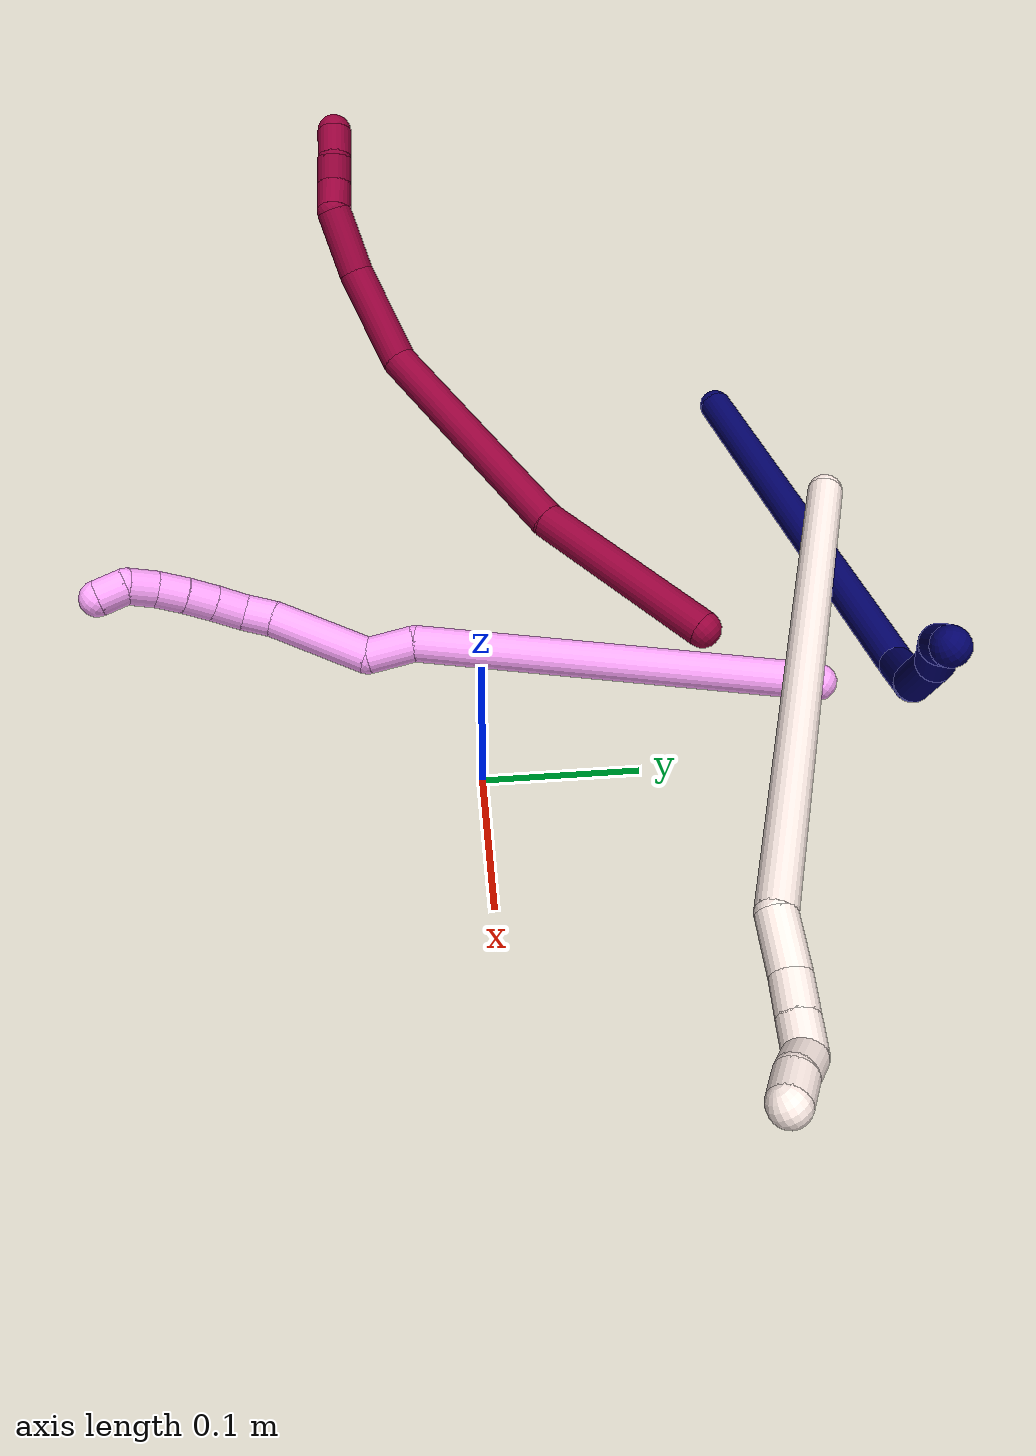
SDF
<sdf version="1.7">
 <world name="default">
  <model name="4">
   <static>0</static>
   <link name="4">
    <collision name="collision-cylinder-e_1_1_4">
     <pose>-0.002493 -0.082238 0.10872 0.647598 -0.018283 -0.006136</pose>
     <geometry><cylinder><radius>0.0125</radius><length>0.272685</length></cylinder></geometry>
     <surface>
      <friction><ode><mu>1.16</mu><mu2>1.16</mu2><slip1>0</slip1><slip2>0</slip2></ode></friction>
      <contact><ode><kp>1e+06</kp><kd>1</kd><max_vel>0</max_vel><min_depth>0.001</min_depth></ode></contact>
     </surface>
    </collision>
    <visual name="visual-cylinder-e_1_1_4">
     <pose>-0.002493 -0.082238 0.10872 0.647598 -0.018283 -0.006136</pose>
     <geometry><cylinder><radius>0.0125</radius><length>0.272685</length></cylinder></geometry>
     <material><ambient>1 0.65098 0.996078 1</ambient></material>
    </visual>
    <collision name="collision-cylinder-e_2_4_5">
     <pose>-0.001651 -0.177371 0.227206 0.922596 0.203303 0.101318</pose>
     <geometry><cylinder><radius>0.0125</radius><length>0.033032</length></cylinder></geometry>
     <surface>
      <friction><ode><mu>1.16</mu><mu2>1.16</mu2><slip1>0</slip1><slip2>0</slip2></ode></friction>
      <contact><ode><kp>1e+06</kp><kd>1</kd><max_vel>0</max_vel><min_depth>0.001</min_depth></ode></contact>
     </surface>
    </collision>
    <visual name="visual-cylinder-e_2_4_5">
     <pose>-0.001651 -0.177371 0.227206 0.922596 0.203303 0.101318</pose>
     <geometry><cylinder><radius>0.0125</radius><length>0.033032</length></cylinder></geometry>
     <material><ambient>1 0.65098 0.996078 1</ambient></material>
    </visual>
    <collision name="collision-cylinder-e_3_5_6">
     <pose>-0.005692 -0.205133 0.26795 0.447462 -0.211454 -0.048285</pose>
     <geometry><cylinder><radius>0.0125</radius><length>0.070286</length></cylinder></geometry>
     <surface>
      <friction><ode><mu>1.16</mu><mu2>1.16</mu2><slip1>0</slip1><slip2>0</slip2></ode></friction>
      <contact><ode><kp>1e+06</kp><kd>1</kd><max_vel>0</max_vel><min_depth>0.001</min_depth></ode></contact>
     </surface>
    </collision>
    <visual name="visual-cylinder-e_3_5_6">
     <pose>-0.005692 -0.205133 0.26795 0.447462 -0.211454 -0.048285</pose>
     <geometry><cylinder><radius>0.0125</radius><length>0.070286</length></cylinder></geometry>
     <material><ambient>1 0.65098 0.996078 1</ambient></material>
    </visual>
    <collision name="collision-cylinder-e_4_6_7">
     <pose>-0.013655 -0.225168 0.307987 0.518405 -0.056283 -0.014928</pose>
     <geometry><cylinder><radius>0.0125</radius><length>0.020893</length></cylinder></geometry>
     <surface>
      <friction><ode><mu>1.16</mu><mu2>1.16</mu2><slip1>0</slip1><slip2>0</slip2></ode></friction>
      <contact><ode><kp>1e+06</kp><kd>1</kd><max_vel>0</max_vel><min_depth>0.001</min_depth></ode></contact>
     </surface>
    </collision>
    <visual name="visual-cylinder-e_4_6_7">
     <pose>-0.013655 -0.225168 0.307987 0.518405 -0.056283 -0.014928</pose>
     <geometry><cylinder><radius>0.0125</radius><length>0.020893</length></cylinder></geometry>
     <material><ambient>1 0.65098 0.996078 1</ambient></material>
    </visual>
    <collision name="collision-cylinder-e_5_7_8">
     <pose>-0.011978 -0.232956 0.327492 0.245782 0.207317 0.025697</pose>
     <geometry><cylinder><radius>0.0125</radius><length>0.02201</length></cylinder></geometry>
     <surface>
      <friction><ode><mu>1.16</mu><mu2>1.16</mu2><slip1>0</slip1><slip2>0</slip2></ode></friction>
      <contact><ode><kp>1e+06</kp><kd>1</kd><max_vel>0</max_vel><min_depth>0.001</min_depth></ode></contact>
     </surface>
    </collision>
    <visual name="visual-cylinder-e_5_7_8">
     <pose>-0.011978 -0.232956 0.327492 0.245782 0.207317 0.025697</pose>
     <geometry><cylinder><radius>0.0125</radius><length>0.02201</length></cylinder></geometry>
     <material><ambient>1 0.65098 0.996078 1</ambient></material>
    </visual>
    <collision name="collision-cylinder-e_6_8_9">
     <pose>-0.007218 -0.238012 0.347453 0.250587 0.248687 0.031483</pose>
     <geometry><cylinder><radius>0.0125</radius><length>0.020269</length></cylinder></geometry>
     <surface>
      <friction><ode><mu>1.16</mu><mu2>1.16</mu2><slip1>0</slip1><slip2>0</slip2></ode></friction>
      <contact><ode><kp>1e+06</kp><kd>1</kd><max_vel>0</max_vel><min_depth>0.001</min_depth></ode></contact>
     </surface>
    </collision>
    <visual name="visual-cylinder-e_6_8_9">
     <pose>-0.007218 -0.238012 0.347453 0.250587 0.248687 0.031483</pose>
     <geometry><cylinder><radius>0.0125</radius><length>0.020269</length></cylinder></geometry>
     <material><ambient>1 0.65098 0.996078 1</ambient></material>
    </visual>
    <collision name="collision-cylinder-e_7_9_10">
     <pose>-0.002129 -0.243583 0.366467 0.318799 0.253858 0.041026</pose>
     <geometry><cylinder><radius>0.0125</radius><length>0.020666</length></cylinder></geometry>
     <surface>
      <friction><ode><mu>1.16</mu><mu2>1.16</mu2><slip1>0</slip1><slip2>0</slip2></ode></friction>
      <contact><ode><kp>1e+06</kp><kd>1</kd><max_vel>0</max_vel><min_depth>0.001</min_depth></ode></contact>
     </surface>
    </collision>
    <visual name="visual-cylinder-e_7_9_10">
     <pose>-0.002129 -0.243583 0.366467 0.318799 0.253858 0.041026</pose>
     <geometry><cylinder><radius>0.0125</radius><length>0.020666</length></cylinder></geometry>
     <material><ambient>1 0.65098 0.996078 1</ambient></material>
    </visual>
    <collision name="collision-cylinder-e_8_10_11">
     <pose>0.004655 -0.249604 0.384584 0.323195 0.431834 0.071482</pose>
     <geometry><cylinder><radius>0.0125</radius><length>0.020018</length></cylinder></geometry>
     <surface>
      <friction><ode><mu>1.16</mu><mu2>1.16</mu2><slip1>0</slip1><slip2>0</slip2></ode></friction>
      <contact><ode><kp>1e+06</kp><kd>1</kd><max_vel>0</max_vel><min_depth>0.001</min_depth></ode></contact>
     </surface>
    </collision>
    <visual name="visual-cylinder-e_8_10_11">
     <pose>0.004655 -0.249604 0.384584 0.323195 0.431834 0.071482</pose>
     <geometry><cylinder><radius>0.0125</radius><length>0.020018</length></cylinder></geometry>
     <material><ambient>1 0.65098 0.996078 1</ambient></material>
    </visual>
    <collision name="collision-cylinder-e_9_11_2">
     <pose>0.013574 -0.259769 0.39831 0.958988 0.488914 0.257968</pose>
     <geometry><cylinder><radius>0.0125</radius><length>0.020141</length></cylinder></geometry>
     <surface>
      <friction><ode><mu>1.16</mu><mu2>1.16</mu2><slip1>0</slip1><slip2>0</slip2></ode></friction>
      <contact><ode><kp>1e+06</kp><kd>1</kd><max_vel>0</max_vel><min_depth>0.001</min_depth></ode></contact>
     </surface>
    </collision>
    <visual name="visual-cylinder-e_9_11_2">
     <pose>0.013574 -0.259769 0.39831 0.958988 0.488914 0.257968</pose>
     <geometry><cylinder><radius>0.0125</radius><length>0.020141</length></cylinder></geometry>
     <material><ambient>1 0.65098 0.996078 1</ambient></material>
    </visual>
    <collision name="collision-sphere-2">
     <pose>0.018304 -0.267047 0.403417 0 -0 0</pose>
     <geometry><sphere><radius>0.0125</radius></sphere></geometry>
     <surface>
      <friction><ode><mu>1.16</mu><mu2>1.16</mu2><slip1>0</slip1><slip2>0</slip2></ode></friction>
      <contact><ode><kp>1e+06</kp><kd>1</kd><max_vel>0</max_vel><min_depth>0.001</min_depth></ode></contact>
     </surface>
    </collision>
    <visual name="visual-sphere-2">
     <pose>0.018304 -0.267047 0.403417 0 -0 0</pose>
     <geometry><sphere><radius>0.0125</radius></sphere></geometry>
     <material><ambient>1 0.65098 0.996078 1</ambient></material>
    </visual>
    <collision name="collision-sphere-11">
     <pose>0.008845 -0.252491 0.393204 0 -0 0</pose>
     <geometry><sphere><radius>0.0125</radius></sphere></geometry>
     <surface>
      <friction><ode><mu>1.16</mu><mu2>1.16</mu2><slip1>0</slip1><slip2>0</slip2></ode></friction>
      <contact><ode><kp>1e+06</kp><kd>1</kd><max_vel>0</max_vel><min_depth>0.001</min_depth></ode></contact>
     </surface>
    </collision>
    <visual name="visual-sphere-11">
     <pose>0.008845 -0.252491 0.393204 0 -0 0</pose>
     <geometry><sphere><radius>0.0125</radius></sphere></geometry>
     <material><ambient>1 0.65098 0.996078 1</ambient></material>
    </visual>
    <collision name="collision-sphere-10">
     <pose>0.000466 -0.246717 0.375965 0 -0 0</pose>
     <geometry><sphere><radius>0.0125</radius></sphere></geometry>
     <surface>
      <friction><ode><mu>1.16</mu><mu2>1.16</mu2><slip1>0</slip1><slip2>0</slip2></ode></friction>
      <contact><ode><kp>1e+06</kp><kd>1</kd><max_vel>0</max_vel><min_depth>0.001</min_depth></ode></contact>
     </surface>
    </collision>
    <visual name="visual-sphere-10">
     <pose>0.000466 -0.246717 0.375965 0 -0 0</pose>
     <geometry><sphere><radius>0.0125</radius></sphere></geometry>
     <material><ambient>1 0.65098 0.996078 1</ambient></material>
    </visual>
    <collision name="collision-sphere-9">
     <pose>-0.004724 -0.240448 0.356969 0 -0 0</pose>
     <geometry><sphere><radius>0.0125</radius></sphere></geometry>
     <surface>
      <friction><ode><mu>1.16</mu><mu2>1.16</mu2><slip1>0</slip1><slip2>0</slip2></ode></friction>
      <contact><ode><kp>1e+06</kp><kd>1</kd><max_vel>0</max_vel><min_depth>0.001</min_depth></ode></contact>
     </surface>
    </collision>
    <visual name="visual-sphere-9">
     <pose>-0.004724 -0.240448 0.356969 0 -0 0</pose>
     <geometry><sphere><radius>0.0125</radius></sphere></geometry>
     <material><ambient>1 0.65098 0.996078 1</ambient></material>
    </visual>
    <collision name="collision-sphere-4">
     <pose>-0.004985 -0.164476 0.21744 0 -0 0</pose>
     <geometry><sphere><radius>0.0125</radius></sphere></geometry>
     <surface>
      <friction><ode><mu>1.16</mu><mu2>1.16</mu2><slip1>0</slip1><slip2>0</slip2></ode></friction>
      <contact><ode><kp>1e+06</kp><kd>1</kd><max_vel>0</max_vel><min_depth>0.001</min_depth></ode></contact>
     </surface>
    </collision>
    <visual name="visual-sphere-4">
     <pose>-0.004985 -0.164476 0.21744 0 -0 0</pose>
     <geometry><sphere><radius>0.0125</radius></sphere></geometry>
     <material><ambient>1 0.65098 0.996078 1</ambient></material>
    </visual>
    <collision name="collision-sphere-1">
     <geometry><sphere><radius>0.0125</radius></sphere></geometry>
     <surface>
      <friction><ode><mu>1.16</mu><mu2>1.16</mu2><slip1>0</slip1><slip2>0</slip2></ode></friction>
      <contact><ode><kp>1e+06</kp><kd>1</kd><max_vel>0</max_vel><min_depth>0.001</min_depth></ode></contact>
     </surface>
    </collision>
    <visual name="visual-sphere-1">
     <geometry><sphere><radius>0.0125</radius></sphere></geometry>
     <material><ambient>1 0.65098 0.996078 1</ambient></material>
    </visual>
    <collision name="collision-sphere-8">
     <pose>-0.009713 -0.235576 0.337937 0 -0 0</pose>
     <geometry><sphere><radius>0.0125</radius></sphere></geometry>
     <surface>
      <friction><ode><mu>1.16</mu><mu2>1.16</mu2><slip1>0</slip1><slip2>0</slip2></ode></friction>
      <contact><ode><kp>1e+06</kp><kd>1</kd><max_vel>0</max_vel><min_depth>0.001</min_depth></ode></contact>
     </surface>
    </collision>
    <visual name="visual-sphere-8">
     <pose>-0.009713 -0.235576 0.337937 0 -0 0</pose>
     <geometry><sphere><radius>0.0125</radius></sphere></geometry>
     <material><ambient>1 0.65098 0.996078 1</ambient></material>
    </visual>
    <collision name="collision-sphere-5">
     <pose>0.001684 -0.190266 0.236972 0 -0 0</pose>
     <geometry><sphere><radius>0.0125</radius></sphere></geometry>
     <surface>
      <friction><ode><mu>1.16</mu><mu2>1.16</mu2><slip1>0</slip1><slip2>0</slip2></ode></friction>
      <contact><ode><kp>1e+06</kp><kd>1</kd><max_vel>0</max_vel><min_depth>0.001</min_depth></ode></contact>
     </surface>
    </collision>
    <visual name="visual-sphere-5">
     <pose>0.001684 -0.190266 0.236972 0 -0 0</pose>
     <geometry><sphere><radius>0.0125</radius></sphere></geometry>
     <material><ambient>1 0.65098 0.996078 1</ambient></material>
    </visual>
    <collision name="collision-sphere-6">
     <pose>-0.013068 -0.22 0.298927 0 -0 0</pose>
     <geometry><sphere><radius>0.0125</radius></sphere></geometry>
     <surface>
      <friction><ode><mu>1.16</mu><mu2>1.16</mu2><slip1>0</slip1><slip2>0</slip2></ode></friction>
      <contact><ode><kp>1e+06</kp><kd>1</kd><max_vel>0</max_vel><min_depth>0.001</min_depth></ode></contact>
     </surface>
    </collision>
    <visual name="visual-sphere-6">
     <pose>-0.013068 -0.22 0.298927 0 -0 0</pose>
     <geometry><sphere><radius>0.0125</radius></sphere></geometry>
     <material><ambient>1 0.65098 0.996078 1</ambient></material>
    </visual>
    <collision name="collision-sphere-7">
     <pose>-0.014243 -0.230336 0.317046 0 -0 0</pose>
     <geometry><sphere><radius>0.0125</radius></sphere></geometry>
     <surface>
      <friction><ode><mu>1.16</mu><mu2>1.16</mu2><slip1>0</slip1><slip2>0</slip2></ode></friction>
      <contact><ode><kp>1e+06</kp><kd>1</kd><max_vel>0</max_vel><min_depth>0.001</min_depth></ode></contact>
     </surface>
    </collision>
    <visual name="visual-sphere-7">
     <pose>-0.014243 -0.230336 0.317046 0 -0 0</pose>
     <geometry><sphere><radius>0.0125</radius></sphere></geometry>
     <material><ambient>1 0.65098 0.996078 1</ambient></material>
    </visual>
    <inertial>
     <pose>-0.003014 -0.145241 0.199928 0 -0 0</pose>
     <mass>0.5</mass>
     <inertia>
      <ixx>0.001734</ixx>
      <ixy>0</ixy>
      <ixz>0</ixz>
      <iyy>0.001364</iyy>
      <iyz>0</iyz>
      <izz>0.001112</izz>
     </inertia>
    </inertial>
   </link>
   <pose>-0.059204 0.22938 0.011459 0.892486 -0.172442 -0.164077</pose>
  </model>
  <model name="7">
   <static>0</static>
   <link name="7">
    <collision name="collision-cylinder-e_1_1_4">
     <pose>0.132883 0.08008 0.033742 -1.17202 0.991649 -0.689409</pose>
     <geometry><cylinder><radius>0.0125</radius><length>0.317548</length></cylinder></geometry>
     <surface>
      <friction><ode><mu>1.16</mu><mu2>1.16</mu2><slip1>0</slip1><slip2>0</slip2></ode></friction>
      <contact><ode><kp>1e+06</kp><kd>1</kd><max_vel>0</max_vel><min_depth>0.001</min_depth></ode></contact>
     </surface>
    </collision>
    <visual name="visual-cylinder-e_1_1_4">
     <pose>0.132883 0.08008 0.033742 -1.17202 0.991649 -0.689409</pose>
     <geometry><cylinder><radius>0.0125</radius><length>0.317548</length></cylinder></geometry>
     <material><ambient>0.003922 0 0.403922 1</ambient></material>
    </visual>
    <collision name="collision-cylinder-e_2_4_5">
     <pose>0.290837 0.172762 0.053105 -2.42201 0.919284 -1.84194</pose>
     <geometry><cylinder><radius>0.0125</radius><length>0.063061</length></cylinder></geometry>
     <surface>
      <friction><ode><mu>1.16</mu><mu2>1.16</mu2><slip1>0</slip1><slip2>0</slip2></ode></friction>
      <contact><ode><kp>1e+06</kp><kd>1</kd><max_vel>0</max_vel><min_depth>0.001</min_depth></ode></contact>
     </surface>
    </collision>
    <visual name="visual-cylinder-e_2_4_5">
     <pose>0.290837 0.172762 0.053105 -2.42201 0.919284 -1.84194</pose>
     <geometry><cylinder><radius>0.0125</radius><length>0.063061</length></cylinder></geometry>
     <material><ambient>0.003922 0 0.403922 1</ambient></material>
    </visual>
    <collision name="collision-cylinder-e_3_5_6">
     <pose>0.334386 0.184046 0.023747 3.05389 0.887698 2.95755</pose>
     <geometry><cylinder><radius>0.0125</radius><length>0.047645</length></cylinder></geometry>
     <surface>
      <friction><ode><mu>1.16</mu><mu2>1.16</mu2><slip1>0</slip1><slip2>0</slip2></ode></friction>
      <contact><ode><kp>1e+06</kp><kd>1</kd><max_vel>0</max_vel><min_depth>0.001</min_depth></ode></contact>
     </surface>
    </collision>
    <visual name="visual-cylinder-e_3_5_6">
     <pose>0.334386 0.184046 0.023747 3.05389 0.887698 2.95755</pose>
     <geometry><cylinder><radius>0.0125</radius><length>0.047645</length></cylinder></geometry>
     <material><ambient>0.003922 0 0.403922 1</ambient></material>
    </visual>
    <collision name="collision-cylinder-e_4_6_7">
     <pose>0.368331 0.18589 -0.009221 -2.96765 0.702686 -2.67454</pose>
     <geometry><cylinder><radius>0.0125</radius><length>0.047869</length></cylinder></geometry>
     <surface>
      <friction><ode><mu>1.16</mu><mu2>1.16</mu2><slip1>0</slip1><slip2>0</slip2></ode></friction>
      <contact><ode><kp>1e+06</kp><kd>1</kd><max_vel>0</max_vel><min_depth>0.001</min_depth></ode></contact>
     </surface>
    </collision>
    <visual name="visual-cylinder-e_4_6_7">
     <pose>0.368331 0.18589 -0.009221 -2.96765 0.702686 -2.67454</pose>
     <geometry><cylinder><radius>0.0125</radius><length>0.047869</length></cylinder></geometry>
     <material><ambient>0.003922 0 0.403922 1</ambient></material>
    </visual>
    <collision name="collision-cylinder-e_5_7_2">
     <pose>0.393709 0.1921 -0.033128 -2.66588 0.979207 -2.28762</pose>
     <geometry><cylinder><radius>0.0125</radius><length>0.023878</length></cylinder></geometry>
     <surface>
      <friction><ode><mu>1.16</mu><mu2>1.16</mu2><slip1>0</slip1><slip2>0</slip2></ode></friction>
      <contact><ode><kp>1e+06</kp><kd>1</kd><max_vel>0</max_vel><min_depth>0.001</min_depth></ode></contact>
     </surface>
    </collision>
    <visual name="visual-cylinder-e_5_7_2">
     <pose>0.393709 0.1921 -0.033128 -2.66588 0.979207 -2.28762</pose>
     <geometry><cylinder><radius>0.0125</radius><length>0.023878</length></cylinder></geometry>
     <material><ambient>0.003922 0 0.403922 1</ambient></material>
    </visual>
    <collision name="collision-sphere-2">
     <pose>0.403619 0.195149 -0.039047 0 -0 0</pose>
     <geometry><sphere><radius>0.0125</radius></sphere></geometry>
     <surface>
      <friction><ode><mu>1.16</mu><mu2>1.16</mu2><slip1>0</slip1><slip2>0</slip2></ode></friction>
      <contact><ode><kp>1e+06</kp><kd>1</kd><max_vel>0</max_vel><min_depth>0.001</min_depth></ode></contact>
     </surface>
    </collision>
    <visual name="visual-sphere-2">
     <pose>0.403619 0.195149 -0.039047 0 -0 0</pose>
     <geometry><sphere><radius>0.0125</radius></sphere></geometry>
     <material><ambient>0.003922 0 0.403922 1</ambient></material>
    </visual>
    <collision name="collision-sphere-7">
     <pose>0.383799 0.189051 -0.02721 0 -0 0</pose>
     <geometry><sphere><radius>0.0125</radius></sphere></geometry>
     <surface>
      <friction><ode><mu>1.16</mu><mu2>1.16</mu2><slip1>0</slip1><slip2>0</slip2></ode></friction>
      <contact><ode><kp>1e+06</kp><kd>1</kd><max_vel>0</max_vel><min_depth>0.001</min_depth></ode></contact>
     </surface>
    </collision>
    <visual name="visual-sphere-7">
     <pose>0.383799 0.189051 -0.02721 0 -0 0</pose>
     <geometry><sphere><radius>0.0125</radius></sphere></geometry>
     <material><ambient>0.003922 0 0.403922 1</ambient></material>
    </visual>
    <collision name="collision-sphere-6">
     <pose>0.352863 0.182729 0.008768 0 -0 0</pose>
     <geometry><sphere><radius>0.0125</radius></sphere></geometry>
     <surface>
      <friction><ode><mu>1.16</mu><mu2>1.16</mu2><slip1>0</slip1><slip2>0</slip2></ode></friction>
      <contact><ode><kp>1e+06</kp><kd>1</kd><max_vel>0</max_vel><min_depth>0.001</min_depth></ode></contact>
     </surface>
    </collision>
    <visual name="visual-sphere-6">
     <pose>0.352863 0.182729 0.008768 0 -0 0</pose>
     <geometry><sphere><radius>0.0125</radius></sphere></geometry>
     <material><ambient>0.003922 0 0.403922 1</ambient></material>
    </visual>
    <collision name="collision-sphere-5">
     <pose>0.315909 0.185363 0.038726 0 -0 0</pose>
     <geometry><sphere><radius>0.0125</radius></sphere></geometry>
     <surface>
      <friction><ode><mu>1.16</mu><mu2>1.16</mu2><slip1>0</slip1><slip2>0</slip2></ode></friction>
      <contact><ode><kp>1e+06</kp><kd>1</kd><max_vel>0</max_vel><min_depth>0.001</min_depth></ode></contact>
     </surface>
    </collision>
    <visual name="visual-sphere-5">
     <pose>0.315909 0.185363 0.038726 0 -0 0</pose>
     <geometry><sphere><radius>0.0125</radius></sphere></geometry>
     <material><ambient>0.003922 0 0.403922 1</ambient></material>
    </visual>
    <collision name="collision-sphere-1">
     <geometry><sphere><radius>0.0125</radius></sphere></geometry>
     <surface>
      <friction><ode><mu>1.16</mu><mu2>1.16</mu2><slip1>0</slip1><slip2>0</slip2></ode></friction>
      <contact><ode><kp>1e+06</kp><kd>1</kd><max_vel>0</max_vel><min_depth>0.001</min_depth></ode></contact>
     </surface>
    </collision>
    <visual name="visual-sphere-1">
     <geometry><sphere><radius>0.0125</radius></sphere></geometry>
     <material><ambient>0.003922 0 0.403922 1</ambient></material>
    </visual>
    <collision name="collision-sphere-4">
     <pose>0.265765 0.160161 0.067485 0 -0 0</pose>
     <geometry><sphere><radius>0.0125</radius></sphere></geometry>
     <surface>
      <friction><ode><mu>1.16</mu><mu2>1.16</mu2><slip1>0</slip1><slip2>0</slip2></ode></friction>
      <contact><ode><kp>1e+06</kp><kd>1</kd><max_vel>0</max_vel><min_depth>0.001</min_depth></ode></contact>
     </surface>
    </collision>
    <visual name="visual-sphere-4">
     <pose>0.265765 0.160161 0.067485 0 -0 0</pose>
     <geometry><sphere><radius>0.0125</radius></sphere></geometry>
     <material><ambient>0.003922 0 0.403922 1</ambient></material>
    </visual>
    <inertial>
     <pose>0.207002 0.117156 0.027925 0 -0 0</pose>
     <mass>0.5</mass>
     <inertia>
      <ixx>0.000195</ixx>
      <ixy>0</ixy>
      <ixz>0</ixz>
      <iyy>0.001223</iyy>
      <iyz>0</iyz>
      <izz>-0.003645</izz>
     </inertia>
    </inertial>
   </link>
   <pose>-0.381478 0.219472 0.012324 -2.63967 -0.471338 0.559929</pose>
  </model>
  <model name="8">
   <static>0</static>
   <link name="8">
    <collision name="collision-cylinder-e_1_1_4">
     <pose>-0.025051 -0.017075 0.060161 0.276546 -0.381002 -0.053659</pose>
     <geometry><cylinder><radius>0.0125</radius><length>0.134737</length></cylinder></geometry>
     <surface>
      <friction><ode><mu>1.16</mu><mu2>1.16</mu2><slip1>0</slip1><slip2>0</slip2></ode></friction>
      <contact><ode><kp>1e+06</kp><kd>1</kd><max_vel>0</max_vel><min_depth>0.001</min_depth></ode></contact>
     </surface>
    </collision>
    <visual name="visual-cylinder-e_1_1_4">
     <pose>-0.025051 -0.017075 0.060161 0.276546 -0.381002 -0.053659</pose>
     <geometry><cylinder><radius>0.0125</radius><length>0.134737</length></cylinder></geometry>
     <material><ambient>0.584314 0 0.227451 1</ambient></material>
    </visual>
    <collision name="collision-cylinder-e_2_4_5">
     <pose>-0.08693 -0.040137 0.201136 0.073953 -0.426567 -0.016023</pose>
     <geometry><cylinder><radius>0.0125</radius><length>0.178021</length></cylinder></geometry>
     <surface>
      <friction><ode><mu>1.16</mu><mu2>1.16</mu2><slip1>0</slip1><slip2>0</slip2></ode></friction>
      <contact><ode><kp>1e+06</kp><kd>1</kd><max_vel>0</max_vel><min_depth>0.001</min_depth></ode></contact>
     </surface>
    </collision>
    <visual name="visual-cylinder-e_2_4_5">
     <pose>-0.08693 -0.040137 0.201136 0.073953 -0.426567 -0.016023</pose>
     <geometry><cylinder><radius>0.0125</radius><length>0.178021</length></cylinder></geometry>
     <material><ambient>0.584314 0 0.227451 1</ambient></material>
    </visual>
    <collision name="collision-cylinder-e_3_5_6">
     <pose>-0.126998 -0.036288 0.316812 -0.274996 -0.089216 0.012353</pose>
     <geometry><cylinder><radius>0.0125</radius><length>0.072738</length></cylinder></geometry>
     <surface>
      <friction><ode><mu>1.16</mu><mu2>1.16</mu2><slip1>0</slip1><slip2>0</slip2></ode></friction>
      <contact><ode><kp>1e+06</kp><kd>1</kd><max_vel>0</max_vel><min_depth>0.001</min_depth></ode></contact>
     </surface>
    </collision>
    <visual name="visual-cylinder-e_3_5_6">
     <pose>-0.126998 -0.036288 0.316812 -0.274996 -0.089216 0.012353</pose>
     <geometry><cylinder><radius>0.0125</radius><length>0.072738</length></cylinder></geometry>
     <material><ambient>0.584314 0 0.227451 1</ambient></material>
    </visual>
    <collision name="collision-cylinder-e_4_6_7">
     <pose>-0.130112 -0.016954 0.373895 -0.403911 0.005244 -0.001074</pose>
     <geometry><cylinder><radius>0.0125</radius><length>0.048328</length></cylinder></geometry>
     <surface>
      <friction><ode><mu>1.16</mu><mu2>1.16</mu2><slip1>0</slip1><slip2>0</slip2></ode></friction>
      <contact><ode><kp>1e+06</kp><kd>1</kd><max_vel>0</max_vel><min_depth>0.001</min_depth></ode></contact>
     </surface>
    </collision>
    <visual name="visual-cylinder-e_4_6_7">
     <pose>-0.130112 -0.016954 0.373895 -0.403911 0.005244 -0.001074</pose>
     <geometry><cylinder><radius>0.0125</radius><length>0.048328</length></cylinder></geometry>
     <material><ambient>0.584314 0 0.227451 1</ambient></material>
    </visual>
    <collision name="collision-cylinder-e_5_7_8">
     <pose>-0.135822 -0.001269 0.404473 -0.63731 -0.511424 0.172068</pose>
     <geometry><cylinder><radius>0.0125</radius><length>0.023852</length></cylinder></geometry>
     <surface>
      <friction><ode><mu>1.16</mu><mu2>1.16</mu2><slip1>0</slip1><slip2>0</slip2></ode></friction>
      <contact><ode><kp>1e+06</kp><kd>1</kd><max_vel>0</max_vel><min_depth>0.001</min_depth></ode></contact>
     </surface>
    </collision>
    <visual name="visual-cylinder-e_5_7_8">
     <pose>-0.135822 -0.001269 0.404473 -0.63731 -0.511424 0.172068</pose>
     <geometry><cylinder><radius>0.0125</radius><length>0.023852</length></cylinder></geometry>
     <material><ambient>0.584314 0 0.227451 1</ambient></material>
    </visual>
    <collision name="collision-cylinder-e_6_8_9">
     <pose>-0.142893 0.011668 0.420293 -0.735251 -0.122071 0.047064</pose>
     <geometry><cylinder><radius>0.0125</radius><length>0.020273</length></cylinder></geometry>
     <surface>
      <friction><ode><mu>1.16</mu><mu2>1.16</mu2><slip1>0</slip1><slip2>0</slip2></ode></friction>
      <contact><ode><kp>1e+06</kp><kd>1</kd><max_vel>0</max_vel><min_depth>0.001</min_depth></ode></contact>
     </surface>
    </collision>
    <visual name="visual-cylinder-e_6_8_9">
     <pose>-0.142893 0.011668 0.420293 -0.735251 -0.122071 0.047064</pose>
     <geometry><cylinder><radius>0.0125</radius><length>0.020273</length></cylinder></geometry>
     <material><ambient>0.584314 0 0.227451 1</ambient></material>
    </visual>
    <collision name="collision-cylinder-e_7_9_2">
     <pose>-0.148112 0.024686 0.435903 -0.655802 -0.369797 0.12708</pose>
     <geometry><cylinder><radius>0.0125</radius><length>0.02205</length></cylinder></geometry>
     <surface>
      <friction><ode><mu>1.16</mu><mu2>1.16</mu2><slip1>0</slip1><slip2>0</slip2></ode></friction>
      <contact><ode><kp>1e+06</kp><kd>1</kd><max_vel>0</max_vel><min_depth>0.001</min_depth></ode></contact>
     </surface>
    </collision>
    <visual name="visual-cylinder-e_7_9_2">
     <pose>-0.148112 0.024686 0.435903 -0.655802 -0.369797 0.12708</pose>
     <geometry><cylinder><radius>0.0125</radius><length>0.02205</length></cylinder></geometry>
     <material><ambient>0.584314 0 0.227451 1</ambient></material>
    </visual>
    <collision name="collision-sphere-2">
     <pose>-0.152097 0.030954 0.44405 0 -0 0</pose>
     <geometry><sphere><radius>0.0125</radius></sphere></geometry>
     <surface>
      <friction><ode><mu>1.16</mu><mu2>1.16</mu2><slip1>0</slip1><slip2>0</slip2></ode></friction>
      <contact><ode><kp>1e+06</kp><kd>1</kd><max_vel>0</max_vel><min_depth>0.001</min_depth></ode></contact>
     </surface>
    </collision>
    <visual name="visual-sphere-2">
     <pose>-0.152097 0.030954 0.44405 0 -0 0</pose>
     <geometry><sphere><radius>0.0125</radius></sphere></geometry>
     <material><ambient>0.584314 0 0.227451 1</ambient></material>
    </visual>
    <collision name="collision-sphere-9">
     <pose>-0.144127 0.018417 0.427755 0 -0 0</pose>
     <geometry><sphere><radius>0.0125</radius></sphere></geometry>
     <surface>
      <friction><ode><mu>1.16</mu><mu2>1.16</mu2><slip1>0</slip1><slip2>0</slip2></ode></friction>
      <contact><ode><kp>1e+06</kp><kd>1</kd><max_vel>0</max_vel><min_depth>0.001</min_depth></ode></contact>
     </surface>
    </collision>
    <visual name="visual-sphere-9">
     <pose>-0.144127 0.018417 0.427755 0 -0 0</pose>
     <geometry><sphere><radius>0.0125</radius></sphere></geometry>
     <material><ambient>0.584314 0 0.227451 1</ambient></material>
    </visual>
    <collision name="collision-sphere-4">
     <pose>-0.050102 -0.03415 0.120323 0 -0 0</pose>
     <geometry><sphere><radius>0.0125</radius></sphere></geometry>
     <surface>
      <friction><ode><mu>1.16</mu><mu2>1.16</mu2><slip1>0</slip1><slip2>0</slip2></ode></friction>
      <contact><ode><kp>1e+06</kp><kd>1</kd><max_vel>0</max_vel><min_depth>0.001</min_depth></ode></contact>
     </surface>
    </collision>
    <visual name="visual-sphere-4">
     <pose>-0.050102 -0.03415 0.120323 0 -0 0</pose>
     <geometry><sphere><radius>0.0125</radius></sphere></geometry>
     <material><ambient>0.584314 0 0.227451 1</ambient></material>
    </visual>
    <collision name="collision-sphere-1">
     <geometry><sphere><radius>0.0125</radius></sphere></geometry>
     <surface>
      <friction><ode><mu>1.16</mu><mu2>1.16</mu2><slip1>0</slip1><slip2>0</slip2></ode></friction>
      <contact><ode><kp>1e+06</kp><kd>1</kd><max_vel>0</max_vel><min_depth>0.001</min_depth></ode></contact>
     </surface>
    </collision>
    <visual name="visual-sphere-1">
     <geometry><sphere><radius>0.0125</radius></sphere></geometry>
     <material><ambient>0.584314 0 0.227451 1</ambient></material>
    </visual>
    <collision name="collision-sphere-8">
     <pose>-0.141659 0.004919 0.412831 0 -0 0</pose>
     <geometry><sphere><radius>0.0125</radius></sphere></geometry>
     <surface>
      <friction><ode><mu>1.16</mu><mu2>1.16</mu2><slip1>0</slip1><slip2>0</slip2></ode></friction>
      <contact><ode><kp>1e+06</kp><kd>1</kd><max_vel>0</max_vel><min_depth>0.001</min_depth></ode></contact>
     </surface>
    </collision>
    <visual name="visual-sphere-8">
     <pose>-0.141659 0.004919 0.412831 0 -0 0</pose>
     <geometry><sphere><radius>0.0125</radius></sphere></geometry>
     <material><ambient>0.584314 0 0.227451 1</ambient></material>
    </visual>
    <collision name="collision-sphere-5">
     <pose>-0.123758 -0.046124 0.281948 0 -0 0</pose>
     <geometry><sphere><radius>0.0125</radius></sphere></geometry>
     <surface>
      <friction><ode><mu>1.16</mu><mu2>1.16</mu2><slip1>0</slip1><slip2>0</slip2></ode></friction>
      <contact><ode><kp>1e+06</kp><kd>1</kd><max_vel>0</max_vel><min_depth>0.001</min_depth></ode></contact>
     </surface>
    </collision>
    <visual name="visual-sphere-5">
     <pose>-0.123758 -0.046124 0.281948 0 -0 0</pose>
     <geometry><sphere><radius>0.0125</radius></sphere></geometry>
     <material><ambient>0.584314 0 0.227451 1</ambient></material>
    </visual>
    <collision name="collision-sphere-6">
     <pose>-0.130239 -0.026451 0.351675 0 -0 0</pose>
     <geometry><sphere><radius>0.0125</radius></sphere></geometry>
     <surface>
      <friction><ode><mu>1.16</mu><mu2>1.16</mu2><slip1>0</slip1><slip2>0</slip2></ode></friction>
      <contact><ode><kp>1e+06</kp><kd>1</kd><max_vel>0</max_vel><min_depth>0.001</min_depth></ode></contact>
     </surface>
    </collision>
    <visual name="visual-sphere-6">
     <pose>-0.130239 -0.026451 0.351675 0 -0 0</pose>
     <geometry><sphere><radius>0.0125</radius></sphere></geometry>
     <material><ambient>0.584314 0 0.227451 1</ambient></material>
    </visual>
    <collision name="collision-sphere-7">
     <pose>-0.129985 -0.007458 0.396114 0 -0 0</pose>
     <geometry><sphere><radius>0.0125</radius></sphere></geometry>
     <surface>
      <friction><ode><mu>1.16</mu><mu2>1.16</mu2><slip1>0</slip1><slip2>0</slip2></ode></friction>
      <contact><ode><kp>1e+06</kp><kd>1</kd><max_vel>0</max_vel><min_depth>0.001</min_depth></ode></contact>
     </surface>
    </collision>
    <visual name="visual-sphere-7">
     <pose>-0.129985 -0.007458 0.396114 0 -0 0</pose>
     <geometry><sphere><radius>0.0125</radius></sphere></geometry>
     <material><ambient>0.584314 0 0.227451 1</ambient></material>
    </visual>
    <inertial>
     <pose>-0.087558 -0.024308 0.225613 0 -0 0</pose>
     <mass>0.5</mass>
     <inertia>
      <ixx>0.000651</ixx>
      <ixy>0</ixy>
      <ixz>0</ixz>
      <iyy>0.000712</iyy>
      <iyz>0</iyz>
      <izz>0.000383</izz>
     </inertia>
    </inertial>
   </link>
   <pose>-0.063052 0.147774 0.062226 0.851357 -0.582604 -0.257702</pose>
  </model>
  <model name="11">
   <static>0</static>
   <link name="11">
    <collision name="collision-cylinder-e_1_1_4">
     <pose>0.167321 -0.066823 -0.057175 2.27855 1.08688 1.83904</pose>
     <geometry><cylinder><radius>0.0125</radius><length>0.378051</length></cylinder></geometry>
     <surface>
      <friction><ode><mu>1.16</mu><mu2>1.16</mu2><slip1>0</slip1><slip2>0</slip2></ode></friction>
      <contact><ode><kp>1e+06</kp><kd>1</kd><max_vel>0</max_vel><min_depth>0.001</min_depth></ode></contact>
     </surface>
    </collision>
    <visual name="visual-cylinder-e_1_1_4">
     <pose>0.167321 -0.066823 -0.057175 2.27855 1.08688 1.83904</pose>
     <geometry><cylinder><radius>0.0125</radius><length>0.378051</length></cylinder></geometry>
     <material><ambient>1 0.933333 0.909804 1</ambient></material>
    </visual>
    <collision name="collision-cylinder-e_2_4_5">
     <pose>0.348829 -0.136674 -0.125513 2.87663 0.886751 2.59446</pose>
     <geometry><cylinder><radius>0.0125</radius><length>0.036607</length></cylinder></geometry>
     <surface>
      <friction><ode><mu>1.16</mu><mu2>1.16</mu2><slip1>0</slip1><slip2>0</slip2></ode></friction>
      <contact><ode><kp>1e+06</kp><kd>1</kd><max_vel>0</max_vel><min_depth>0.001</min_depth></ode></contact>
     </surface>
    </collision>
    <visual name="visual-cylinder-e_2_4_5">
     <pose>0.348829 -0.136674 -0.125513 2.87663 0.886751 2.59446</pose>
     <geometry><cylinder><radius>0.0125</radius><length>0.036607</length></cylinder></geometry>
     <material><ambient>1 0.933333 0.909804 1</ambient></material>
    </visual>
    <collision name="collision-cylinder-e_3_5_6">
     <pose>0.372969 -0.141862 -0.142864 2.80582 0.988546 2.53218</pose>
     <geometry><cylinder><radius>0.0125</radius><length>0.023837</length></cylinder></geometry>
     <surface>
      <friction><ode><mu>1.16</mu><mu2>1.16</mu2><slip1>0</slip1><slip2>0</slip2></ode></friction>
      <contact><ode><kp>1e+06</kp><kd>1</kd><max_vel>0</max_vel><min_depth>0.001</min_depth></ode></contact>
     </surface>
    </collision>
    <visual name="visual-cylinder-e_3_5_6">
     <pose>0.372969 -0.141862 -0.142864 2.80582 0.988546 2.53218</pose>
     <geometry><cylinder><radius>0.0125</radius><length>0.023837</length></cylinder></geometry>
     <material><ambient>1 0.933333 0.909804 1</ambient></material>
    </visual>
    <collision name="collision-cylinder-e_4_6_7">
     <pose>0.391717 -0.145809 -0.154496 2.82438 0.993267 2.56761</pose>
     <geometry><cylinder><radius>0.0125</radius><length>0.020991</length></cylinder></geometry>
     <surface>
      <friction><ode><mu>1.16</mu><mu2>1.16</mu2><slip1>0</slip1><slip2>0</slip2></ode></friction>
      <contact><ode><kp>1e+06</kp><kd>1</kd><max_vel>0</max_vel><min_depth>0.001</min_depth></ode></contact>
     </surface>
    </collision>
    <visual name="visual-cylinder-e_4_6_7">
     <pose>0.391717 -0.145809 -0.154496 2.82438 0.993267 2.56761</pose>
     <geometry><cylinder><radius>0.0125</radius><length>0.020991</length></cylinder></geometry>
     <material><ambient>1 0.933333 0.909804 1</ambient></material>
    </visual>
    <collision name="collision-cylinder-e_5_7_8">
     <pose>0.41002 -0.150177 -0.157953 0.914545 1.24087 0.676212</pose>
     <geometry><cylinder><radius>0.0125</radius><length>0.020105</length></cylinder></geometry>
     <surface>
      <friction><ode><mu>1.16</mu><mu2>1.16</mu2><slip1>0</slip1><slip2>0</slip2></ode></friction>
      <contact><ode><kp>1e+06</kp><kd>1</kd><max_vel>0</max_vel><min_depth>0.001</min_depth></ode></contact>
     </surface>
    </collision>
    <visual name="visual-cylinder-e_5_7_8">
     <pose>0.41002 -0.150177 -0.157953 0.914545 1.24087 0.676212</pose>
     <geometry><cylinder><radius>0.0125</radius><length>0.020105</length></cylinder></geometry>
     <material><ambient>1 0.933333 0.909804 1</ambient></material>
    </visual>
    <collision name="collision-cylinder-e_6_8_2">
     <pose>0.429229 -0.155904 -0.156365 1.69688 1.2547 1.37694</pose>
     <geometry><cylinder><radius>0.0125</radius><length>0.020409</length></cylinder></geometry>
     <surface>
      <friction><ode><mu>1.16</mu><mu2>1.16</mu2><slip1>0</slip1><slip2>0</slip2></ode></friction>
      <contact><ode><kp>1e+06</kp><kd>1</kd><max_vel>0</max_vel><min_depth>0.001</min_depth></ode></contact>
     </surface>
    </collision>
    <visual name="visual-cylinder-e_6_8_2">
     <pose>0.429229 -0.155904 -0.156365 1.69688 1.2547 1.37694</pose>
     <geometry><cylinder><radius>0.0125</radius><length>0.020409</length></cylinder></geometry>
     <material><ambient>1 0.933333 0.909804 1</ambient></material>
    </visual>
    <collision name="collision-sphere-2">
     <pose>0.438928 -0.159051 -0.156764 0 -0 0</pose>
     <geometry><sphere><radius>0.0125</radius></sphere></geometry>
     <surface>
      <friction><ode><mu>1.16</mu><mu2>1.16</mu2><slip1>0</slip1><slip2>0</slip2></ode></friction>
      <contact><ode><kp>1e+06</kp><kd>1</kd><max_vel>0</max_vel><min_depth>0.001</min_depth></ode></contact>
     </surface>
    </collision>
    <visual name="visual-sphere-2">
     <pose>0.438928 -0.159051 -0.156764 0 -0 0</pose>
     <geometry><sphere><radius>0.0125</radius></sphere></geometry>
     <material><ambient>1 0.933333 0.909804 1</ambient></material>
    </visual>
    <collision name="collision-sphere-4">
     <pose>0.334643 -0.133645 -0.11435 0 -0 0</pose>
     <geometry><sphere><radius>0.0125</radius></sphere></geometry>
     <surface>
      <friction><ode><mu>1.16</mu><mu2>1.16</mu2><slip1>0</slip1><slip2>0</slip2></ode></friction>
      <contact><ode><kp>1e+06</kp><kd>1</kd><max_vel>0</max_vel><min_depth>0.001</min_depth></ode></contact>
     </surface>
    </collision>
    <visual name="visual-sphere-4">
     <pose>0.334643 -0.133645 -0.11435 0 -0 0</pose>
     <geometry><sphere><radius>0.0125</radius></sphere></geometry>
     <material><ambient>1 0.933333 0.909804 1</ambient></material>
    </visual>
    <collision name="collision-sphere-1">
     <geometry><sphere><radius>0.0125</radius></sphere></geometry>
     <surface>
      <friction><ode><mu>1.16</mu><mu2>1.16</mu2><slip1>0</slip1><slip2>0</slip2></ode></friction>
      <contact><ode><kp>1e+06</kp><kd>1</kd><max_vel>0</max_vel><min_depth>0.001</min_depth></ode></contact>
     </surface>
    </collision>
    <visual name="visual-sphere-1">
     <geometry><sphere><radius>0.0125</radius></sphere></geometry>
     <material><ambient>1 0.933333 0.909804 1</ambient></material>
    </visual>
    <collision name="collision-sphere-8">
     <pose>0.419531 -0.152757 -0.155966 0 -0 0</pose>
     <geometry><sphere><radius>0.0125</radius></sphere></geometry>
     <surface>
      <friction><ode><mu>1.16</mu><mu2>1.16</mu2><slip1>0</slip1><slip2>0</slip2></ode></friction>
      <contact><ode><kp>1e+06</kp><kd>1</kd><max_vel>0</max_vel><min_depth>0.001</min_depth></ode></contact>
     </surface>
    </collision>
    <visual name="visual-sphere-8">
     <pose>0.419531 -0.152757 -0.155966 0 -0 0</pose>
     <geometry><sphere><radius>0.0125</radius></sphere></geometry>
     <material><ambient>1 0.933333 0.909804 1</ambient></material>
    </visual>
    <collision name="collision-sphere-5">
     <pose>0.363014 -0.139703 -0.136676 0 -0 0</pose>
     <geometry><sphere><radius>0.0125</radius></sphere></geometry>
     <surface>
      <friction><ode><mu>1.16</mu><mu2>1.16</mu2><slip1>0</slip1><slip2>0</slip2></ode></friction>
      <contact><ode><kp>1e+06</kp><kd>1</kd><max_vel>0</max_vel><min_depth>0.001</min_depth></ode></contact>
     </surface>
    </collision>
    <visual name="visual-sphere-5">
     <pose>0.363014 -0.139703 -0.136676 0 -0 0</pose>
     <geometry><sphere><radius>0.0125</radius></sphere></geometry>
     <material><ambient>1 0.933333 0.909804 1</ambient></material>
    </visual>
    <collision name="collision-sphere-6">
     <pose>0.382924 -0.144022 -0.149052 0 -0 0</pose>
     <geometry><sphere><radius>0.0125</radius></sphere></geometry>
     <surface>
      <friction><ode><mu>1.16</mu><mu2>1.16</mu2><slip1>0</slip1><slip2>0</slip2></ode></friction>
      <contact><ode><kp>1e+06</kp><kd>1</kd><max_vel>0</max_vel><min_depth>0.001</min_depth></ode></contact>
     </surface>
    </collision>
    <visual name="visual-sphere-6">
     <pose>0.382924 -0.144022 -0.149052 0 -0 0</pose>
     <geometry><sphere><radius>0.0125</radius></sphere></geometry>
     <material><ambient>1 0.933333 0.909804 1</ambient></material>
    </visual>
    <collision name="collision-sphere-7">
     <pose>0.40051 -0.147597 -0.15994 0 -0 0</pose>
     <geometry><sphere><radius>0.0125</radius></sphere></geometry>
     <surface>
      <friction><ode><mu>1.16</mu><mu2>1.16</mu2><slip1>0</slip1><slip2>0</slip2></ode></friction>
      <contact><ode><kp>1e+06</kp><kd>1</kd><max_vel>0</max_vel><min_depth>0.001</min_depth></ode></contact>
     </surface>
    </collision>
    <visual name="visual-sphere-7">
     <pose>0.40051 -0.147597 -0.15994 0 -0 0</pose>
     <geometry><sphere><radius>0.0125</radius></sphere></geometry>
     <material><ambient>1 0.933333 0.909804 1</ambient></material>
    </visual>
    <inertial>
     <pose>0.220284 -0.085818 -0.07845 0 -0 0</pose>
     <mass>0.5</mass>
     <inertia>
      <ixx>0.001503</ixx>
      <ixy>0</ixy>
      <ixz>0</ixz>
      <iyy>0.005737</iyy>
      <iyz>0</iyz>
      <izz>-0.002422</izz>
     </inertia>
    </inertial>
   </link>
   <pose>-0.210397 0.265123 0.052966 0.585764 -0.450556 -0.176476</pose>
  </model>
 </world>
</sdf>
